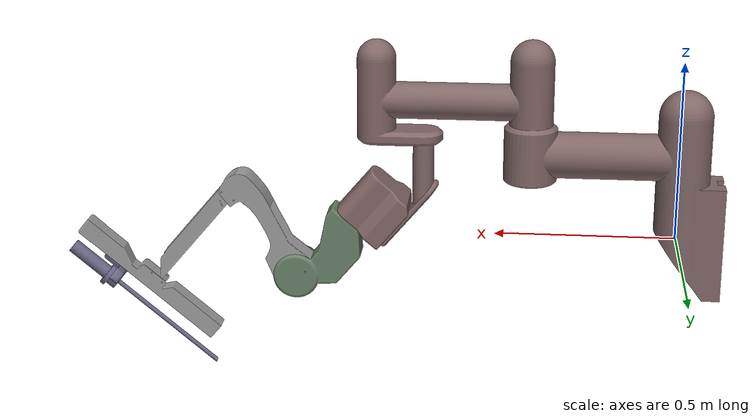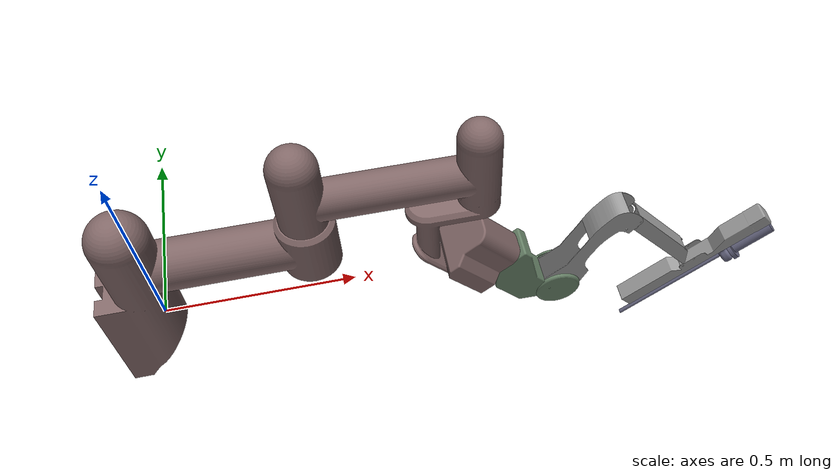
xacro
<?xml version="1.0" ?>
<robot name="ecm" xmlns:xacro="http://www.ros.org/wiki/xacro">

  <!-- Macros -->
  <xacro:include filename="$(find dvrk_model)/model/ecm.urdf.xacro"/>

  <link name="world"/>
  <xacro:ecm
      prefix="ecm"
      parent_link="world"
      xyz="0 0.0 0.0" rpy="0.0 0.0 0.0"/>

</robot>

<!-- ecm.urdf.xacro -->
<robot name="ecm" xmlns:xacro="http://www.ros.org/wiki/xacro">
  <!-- Colors -->
  <xacro:include filename="$(find dvrk_model)/model/common.urdf.xacro"/>

  <!-- Macro for da Vinci Endoscope Camera Manipulator (ECM) -->
  <xacro:macro name="ecm" params="prefix parent_link xyz rpy">

    <!-- Joint 0: Fixed to World-->
    <joint name="setup_fixed_joint" type="fixed">
      <parent link="${parent_link}"/>
      <child link="${prefix}_setup_base_link"/>
      <origin rpy="${rpy}" xyz="${xyz}"/>
    </joint>

    <link name="${prefix}_setup_base_link"/>

    <joint name="setup_tip_joint" type="fixed">
      <parent link="${prefix}_setup_base_link"/>
      <child link="${prefix}_setup_link"/>
      <origin rpy="-0.87046370379 0 -${PI/2}" xyz="0.91324 -0.02111 0.03166"/>
      <axis xyz="0 0 1"/>
    </joint>

    <link name="${prefix}_setup_link">
      <visual>
        <origin rpy="0 0 0" xyz="0 0 0"/>
        <geometry>
          <mesh filename="package://dvrk_model/meshes/ecm/Endo_Arm.STL"/>
        </geometry>
	<material name="DaVinciRed"/>
      </visual>
      <collision>
        <origin rpy="0 0 0" xyz="0 0 0"/>
        <geometry>
          <mesh filename="package://dvrk_model/meshes/ecm/Endo_Arm.STL"/>
        </geometry>
      </collision>
    </link>

    <!-- Joint 0: Fixed to Setup Joint-->
    <joint name="fixed_joint" type="fixed">
      <parent link="${prefix}_setup_link"/>
      <child link="${prefix}_base_link"/>
      <origin rpy="0 0 0" xyz="0 0.603 0"/>
    </joint>
    <link name="${prefix}_base_link"/>

    <!-- Joint 1: Outer Yaw -->
    <joint name="outer_yaw" type="revolute">
      <parent link="${prefix}_base_link"/>
      <child link="${prefix}_yaw_link"/>
      <origin rpy="0 -${PI/2} ${PI/2}" xyz="0 0 0"/>
      <axis xyz="0 0 1"/>
      <!--rotates about z axis-->
      <!--limit effort and velocity picked arbitrarily check-->
      <limit effort="50.0" lower="${-75/180*PI}" upper="${PI/4}" velocity="2"/>
      <joint_properties damping="1.0" friction="0.0"/>
    </joint>

    <link name="${prefix}_yaw_link">
      <visual>
        <origin rpy="0 0 -${PI/2}" xyz="0.0 0 0.603"/>
        <geometry>
          <mesh filename="package://dvrk_model/meshes/ecm/Endo_Link_5.STL"/>
        </geometry>
	<material name="DaVinciGreen"/>
      </visual>
      <collision>
        <origin rpy="0 0 -${PI/2}" xyz="0.0 0 0.603"/>
        <geometry>

          <mesh filename="package://dvrk_model/meshes/ecm/Endo_Link_5.STL"/>
        </geometry>
      </collision>
    </link>

    <!-- Joint 2: Pitch -->
    <joint name="outer_pitch" type="revolute">
      <parent link="${prefix}_yaw_link"/>
      <child link="${prefix}_pitch_link"/>
      <origin rpy="-${PI/2} -${PI/2} 0" xyz="0 0 0"/>
      <axis xyz="0 0 1"/>
      <limit effort="100.0" lower="${-PI/4}" upper="${PI*65/180}" velocity="10"/>
      <joint_properties damping="1.0" friction="0.0"/>
    </joint>
    <link name="${prefix}_pitch_link"/>

    <joint name="outer_pitch_0" type="continuous">
      <parent link="${prefix}_yaw_link"/>
      <child link="${prefix}_pitch_link_1"/>
      <origin rpy="-${PI/2} -${PI/2} 0" xyz="0 0 0.378"/>
      <axis xyz="0 0 1"/>
      <joint_properties damping="1.0" friction="0.0"/>
      <mimic joint="outer_pitch" multiplier="1"/>
    </joint>

    <link name="${prefix}_pitch_link_1">
      <visual>
        <origin rpy="${PI} 0 ${PI*78.5/180}" xyz="0.0 0 0.0"/>
        <geometry>
          <mesh filename="package://dvrk_model/meshes/ecm/Endo_Link_5_2.STL"/>
        </geometry>
	<material name="DaVinciMedGray"/>
      </visual>
      <collision>
        <origin rpy="${PI} 0 ${PI*78.5/180}" xyz="0.0 0 0.0"/>
        <geometry>
          <mesh filename="package://dvrk_model/meshes/ecm/Endo_Link_5_2.STL"/>
        </geometry>
      </collision>
      <inertial>
        <mass value=".9"/>
        <inertia ixx="9.0" ixy="0.0" ixz="0.0" iyy="9.0" iyz="0.0" izz="9.0"/>
      </inertial>
    </link>

    <joint name="outer_pitch_1" type="continuous">
      <parent link="${prefix}_pitch_link_1"/>
      <child link="${prefix}_pitch_link_2"/>
      <origin rpy="0 0 0" xyz="0.0558629 0.274575 0"/>
      <axis xyz="0 0 1"/>
      <joint_properties damping="1.0" friction="0.0"/>
      <mimic joint="outer_pitch" multiplier="-1"/>
    </joint>

    <link name="${prefix}_pitch_link_2">
      <visual>
        <origin rpy="0 0 0" xyz="0.0 0 -0.0225"/>
        <geometry>
          <mesh filename="package://dvrk_model/meshes/ecm/Endo_Link_6_2.STL"/>
        </geometry>
	<material name="DaVinciMedGray"/>
      </visual>
      <collision>
        <origin rpy="0 0 0" xyz="0.0 0 -0.0225"/>
        <geometry>
          <mesh filename="package://dvrk_model/meshes/ecm/Endo_Link_6_2.STL"/>
        </geometry>
      </collision>
      <inertial>
        <mass value=".9"/>
        <inertia ixx="9.0" ixy="0.0" ixz="0.0" iyy="9.0" iyz="0.0" izz="9.0"/>
      </inertial>
    </link>

    <joint name="outer_pitch_2" type="continuous">
      <parent link="${prefix}_pitch_link_2"/>
      <child link="${prefix}_pitch_link_3"/>
      <origin rpy="0 0 0" xyz="-0.340 0 0"/>
      <axis xyz="0 0 1"/>
      <joint_properties damping="1.0" friction="0.0"/>
      <mimic joint="outer_pitch" multiplier="1"/>
    </joint>

    <link name="${prefix}_pitch_link_3">
      <visual>
        <origin rpy="0 0 -${PI/2}" xyz="0.0 0 0.025"/>
        <geometry>
          <mesh filename="package://dvrk_model/meshes/ecm/Endo_Link_7.STL"/>
        </geometry>
	<material name="DaVinciMedGray"/>
      </visual>
      <collision>
        <origin rpy="0 0 -${PI/2}" xyz="0.0 0 0.025"/>
        <geometry>
          <mesh filename="package://dvrk_model/meshes/ecm/Endo_Link_7.STL"/>
        </geometry>
      </collision>
      <inertial>
        <mass value=".9"/>
        <inertia ixx="9.0" ixy="0.0" ixz="0.0" iyy="9.0" iyz="0.0" izz="9.0"/>
      </inertial>
    </link>

    <!-- Joint 3: Insertion -->
    <joint name="insertion" type="prismatic">
      <parent link="${prefix}_pitch_link"/>
      <child link="${prefix}_insertion_link"/>
      <origin rpy="${PI/2} 0 0" xyz="0 0.3822 0"/>
      <axis xyz="0 0 1"/>
      <joint_properties damping="1.0" friction="0.0"/>
      <limit effort="100.0" lower="0" upper="0.235" velocity="10"/>
    </joint>

    <link name="${prefix}_insertion_link">
      <visual>
        <origin rpy="0 0 -${PI/2}" xyz="0.0 0 -0.015"/>
        <geometry>
          <mesh filename="package://dvrk_model/meshes/ecm/Endo_Link_8.STL"/>
        </geometry>
	<material name="DaVinciBlue"/>
      </visual>
      <collision>
        <origin rpy="0 0 -${PI/2}" xyz="0.0 0 -0.015"/>
        <geometry>
          <mesh filename="package://dvrk_model/meshes/ecm/Endo_Link_8.STL"/>
        </geometry>
      </collision>
    </link>

    <!-- Joint 4: Roll -->
    <joint name="outer_roll" type="revolute">
      <parent link="${prefix}_insertion_link"/>
      <child link="${prefix}_roll_link"/>
      <origin rpy="0 0 0" xyz="0 0 0.3829"/>
      <axis xyz="0 0 1"/>
      <joint_properties damping="1.0" friction="0.0"/>
      <limit effort="100.0" lower="-${PI/2}" upper="${PI/2}" velocity="10"/>
    </joint>

    <link name="${prefix}_roll_link">
      <visual>
        <origin rpy="0 0 ${PI/2}" xyz="0.0 0 -0.3979"/>
        <geometry>
          <mesh filename="package://dvrk_model/meshes/ecm/EndoScope.STL"/>
        </geometry>
	<material name="DaVinciBlue"/>
      </visual>
      <collision>
        <origin rpy="0 0 ${PI/2}" xyz="0.0 0 -0.3979"/>
        <geometry>
          <mesh filename="package://dvrk_model/meshes/ecm/EndoScope.STL"/>
        </geometry>
      </collision>
    </link>

  </xacro:macro>

</robot>

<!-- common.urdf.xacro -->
<robot include-once="true" xmlns:xacro="http://www.ros.org/wiki/xacro">

  <!-- Mathematical Constants -->
  <xacro:property name="PI" value="3.1415926535897931" />

  <!-- Colors -->
  <xacro:property name="DaVinciWhite"     value="1.0 1.0 1.0 1"/>
  <xacro:property name="DaVinciLightGray" value="0.8 0.8 0.8 1"/>
  <xacro:property name="DaVinciMedGray"   value="0.6 0.6 0.6 1"/>
  <xacro:property name="DaVinciDarkGray"  value="0.4 0.4 0.4 1"/>
  <xacro:property name="DaVinciRed"       value="0.5 0.4 0.4 1"/>
  <xacro:property name="DaVinciGreen"     value="0.4 0.5 0.4 1"/>
  <xacro:property name="DaVinciBlue"      value="0.4 0.4 0.5 1"/>

  <material name="DaVinciWhite">    <color rgba="${DaVinciWhite}"/></material>
  <material name="DaVinciLightGray"><color rgba="${DaVinciLightGray}"/></material>
  <material name="DaVinciMedGray">  <color rgba="${DaVinciMedGray}"/></material>
  <material name="DaVinciDarkGray"> <color rgba="${DaVinciDarkGray}"/></material>
  <material name="DaVinciRed">      <color rgba="${DaVinciRed}"/></material>
  <material name="DaVinciGreen">    <color rgba="${DaVinciGreen}"/></material>
  <material name="DaVinciBlue">     <color rgba="${DaVinciBlue}"/></material>
</robot>
